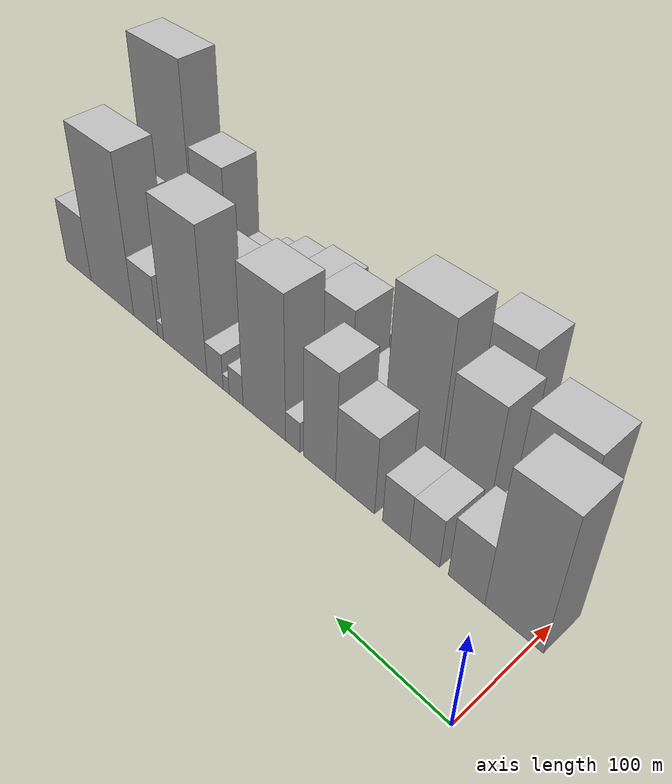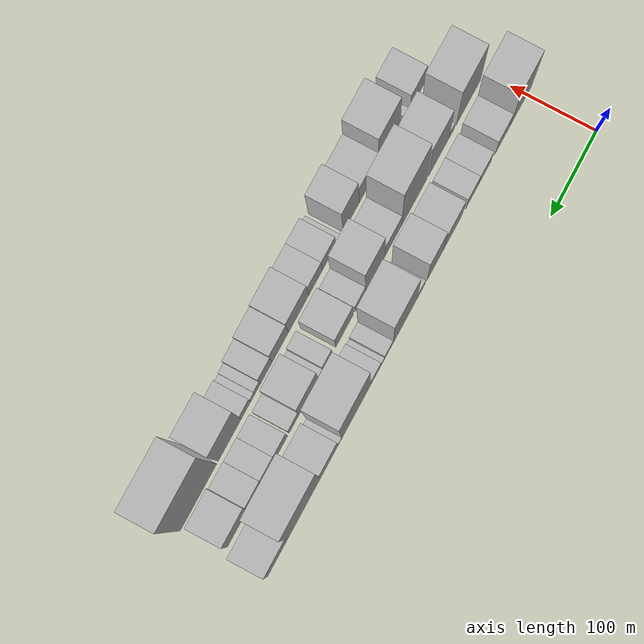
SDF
<sdf version="1.6">
 <world name="default">
  <model name="building_17">
   <static>1</static>
   <pose>100.0000 15.3192 0 0.000000 0.000000 0.000000</pose>
   <link name="link">
    <pose>0 0 70.50 0 0 0</pose>
    <collision name="collision"><geometry><box><size>40.0000 48.6428 141.0000</size></box></geometry></collision>
    <visual name="visual">
     <cast_shadows>0</cast_shadows>
     <geometry><box><size>40.0000 48.6428 141.0000</size></box></geometry>
     <material>
      <script>
       <uri>model://HANNAS_wall/materials/scripts</uri>
       <uri>model://HANNAS_wall/materials/textures</uri>
       <name>vrc/HANNAS_wall</name>
      </script>
     </material>
    </visual>
   </link>
  </model>
  <model name="building_18">
   <static>1</static>
   <pose>100.0000 55.6882 0 0.000000 0.000000 0.000000</pose>
   <link name="link">
    <pose>0 0 31.50 0 0 0</pose>
    <collision name="collision"><geometry><box><size>40.0000 32.0952 63.0000</size></box></geometry></collision>
    <visual name="visual">
     <cast_shadows>0</cast_shadows>
     <geometry><box><size>40.0000 32.0952 63.0000</size></box></geometry>
     <material>
      <script>
       <uri>model://HANNAS_wall/materials/scripts</uri>
       <uri>model://HANNAS_wall/materials/textures</uri>
       <name>vrc/HANNAS_wall</name>
      </script>
     </material>
    </visual>
   </link>
  </model>
  <model name="building_19">
   <static>1</static>
   <pose>100.0000 93.7765 0 0.000000 0.000000 0.000000</pose>
   <link name="link">
    <pose>0 0 25.50 0 0 0</pose>
    <collision name="collision"><geometry><box><size>40.0000 28.0813 51.0000</size></box></geometry></collision>
    <visual name="visual">
     <cast_shadows>0</cast_shadows>
     <geometry><box><size>40.0000 28.0813 51.0000</size></box></geometry>
     <material>
      <script>
       <uri>model://HANNAS_wall/materials/scripts</uri>
       <uri>model://HANNAS_wall/materials/textures</uri>
       <name>vrc/HANNAS_wall</name>
      </script>
     </material>
    </visual>
   </link>
  </model>
  <model name="building_20">
   <static>1</static>
   <pose>100.0000 121.1682 0 0.000000 0.000000 0.000000</pose>
   <link name="link">
    <pose>0 0 25.50 0 0 0</pose>
    <collision name="collision"><geometry><box><size>40.0000 26.7020 51.0000</size></box></geometry></collision>
    <visual name="visual">
     <cast_shadows>0</cast_shadows>
     <geometry><box><size>40.0000 26.7020 51.0000</size></box></geometry>
     <material>
      <script>
       <uri>model://HANNAS_wall/materials/scripts</uri>
       <uri>model://HANNAS_wall/materials/textures</uri>
       <name>vrc/HANNAS_wall</name>
      </script>
     </material>
    </visual>
   </link>
  </model>
  <model name="building_21">
   <static>1</static>
   <pose>100.0000 162.8495 0 0.000000 0.000000 0.000000</pose>
   <link name="link">
    <pose>0 0 40.50 0 0 0</pose>
    <collision name="collision"><geometry><box><size>40.0000 40.6607 81.0000</size></box></geometry></collision>
    <visual name="visual">
     <cast_shadows>0</cast_shadows>
     <geometry><box><size>40.0000 40.6607 81.0000</size></box></geometry>
     <material>
      <script>
       <uri>model://HANNAS_wall/materials/scripts</uri>
       <uri>model://HANNAS_wall/materials/textures</uri>
       <name>vrc/HANNAS_wall</name>
      </script>
     </material>
    </visual>
   </link>
  </model>
  <model name="building_22">
   <static>1</static>
   <pose>100.0000 200.8894 0 0.000000 0.000000 0.000000</pose>
   <link name="link">
    <pose>0 0 57.00 0 0 0</pose>
    <collision name="collision"><geometry><box><size>40.0000 35.4190 114.0000</size></box></geometry></collision>
    <visual name="visual">
     <cast_shadows>0</cast_shadows>
     <geometry><box><size>40.0000 35.4190 114.0000</size></box></geometry>
     <material>
      <script>
       <uri>model://HANNAS_wall/materials/scripts</uri>
       <uri>model://HANNAS_wall/materials/textures</uri>
       <name>vrc/HANNAS_wall</name>
      </script>
     </material>
    </visual>
   </link>
  </model>
  <model name="building_23">
   <static>1</static>
   <pose>100.0000 230.9444 0 0.000000 0.000000 0.000000</pose>
   <link name="link">
    <pose>0 0 16.50 0 0 0</pose>
    <collision name="collision"><geometry><box><size>40.0000 16.6910 33.0000</size></box></geometry></collision>
    <visual name="visual">
     <cast_shadows>0</cast_shadows>
     <geometry><box><size>40.0000 16.6910 33.0000</size></box></geometry>
     <material>
      <script>
       <uri>model://HANNAS_wall/materials/scripts</uri>
       <uri>model://HANNAS_wall/materials/textures</uri>
       <name>vrc/HANNAS_wall</name>
      </script>
     </material>
    </visual>
   </link>
  </model>
  <model name="building_24">
   <static>1</static>
   <pose>100.0000 265.1523 0 0.000000 0.000000 0.000000</pose>
   <link name="link">
    <pose>0 0 75.00 0 0 0</pose>
    <collision name="collision"><geometry><box><size>40.0000 51.7249 150.0000</size></box></geometry></collision>
    <visual name="visual">
     <cast_shadows>0</cast_shadows>
     <geometry><box><size>40.0000 51.7249 150.0000</size></box></geometry>
     <material>
      <script>
       <uri>model://HANNAS_wall/materials/scripts</uri>
       <uri>model://HANNAS_wall/materials/textures</uri>
       <name>vrc/HANNAS_wall</name>
      </script>
     </material>
    </visual>
   </link>
  </model>
  <model name="building_25">
   <static>1</static>
   <pose>100.0000 299.8778 0 0.000000 0.000000 0.000000</pose>
   <link name="link">
    <pose>0 0 16.50 0 0 0</pose>
    <collision name="collision"><geometry><box><size>40.0000 17.7260 33.0000</size></box></geometry></collision>
    <visual name="visual">
     <cast_shadows>0</cast_shadows>
     <geometry><box><size>40.0000 17.7260 33.0000</size></box></geometry>
     <material>
      <script>
       <uri>model://HANNAS_wall/materials/scripts</uri>
       <uri>model://HANNAS_wall/materials/textures</uri>
       <name>vrc/HANNAS_wall</name>
      </script>
     </material>
    </visual>
   </link>
  </model>
  <model name="building_26">
   <static>1</static>
   <pose>100.0000 312.5977 0 0.000000 0.000000 0.000000</pose>
   <link name="link">
    <pose>0 0 9.00 0 0 0</pose>
    <collision name="collision"><geometry><box><size>40.0000 7.7139 18.0000</size></box></geometry></collision>
    <visual name="visual">
     <cast_shadows>0</cast_shadows>
     <geometry><box><size>40.0000 7.7139 18.0000</size></box></geometry>
     <material>
      <script>
       <uri>model://HANNAS_wall/materials/scripts</uri>
       <uri>model://HANNAS_wall/materials/textures</uri>
       <name>vrc/HANNAS_wall</name>
      </script>
     </material>
    </visual>
   </link>
  </model>
  <model name="building_27">
   <static>1</static>
   <pose>100.0000 327.2426 0 0.000000 0.000000 0.000000</pose>
   <link name="link">
    <pose>0 0 19.50 0 0 0</pose>
    <collision name="collision"><geometry><box><size>40.0000 21.5758 39.0000</size></box></geometry></collision>
    <visual name="visual">
     <cast_shadows>0</cast_shadows>
     <geometry><box><size>40.0000 21.5758 39.0000</size></box></geometry>
     <material>
      <script>
       <uri>model://HANNAS_wall/materials/scripts</uri>
       <uri>model://HANNAS_wall/materials/textures</uri>
       <name>vrc/HANNAS_wall</name>
      </script>
     </material>
    </visual>
   </link>
  </model>
  <model name="building_28">
   <static>1</static>
   <pose>100.0000 368.3218 0 0.000000 0.000000 0.000000</pose>
   <link name="link">
    <pose>0 0 78.00 0 0 0</pose>
    <collision name="collision"><geometry><box><size>40.0000 60.5826 156.0000</size></box></geometry></collision>
    <visual name="visual">
     <cast_shadows>0</cast_shadows>
     <geometry><box><size>40.0000 60.5826 156.0000</size></box></geometry>
     <material>
      <script>
       <uri>model://HANNAS_wall/materials/scripts</uri>
       <uri>model://HANNAS_wall/materials/textures</uri>
       <name>vrc/HANNAS_wall</name>
      </script>
     </material>
    </visual>
   </link>
  </model>
  <model name="building_29">
   <static>1</static>
   <pose>100.0000 402.6213 0 0.000000 0.000000 0.000000</pose>
   <link name="link">
    <pose>0 0 9.00 0 0 0</pose>
    <collision name="collision"><geometry><box><size>40.0000 8.0165 18.0000</size></box></geometry></collision>
    <visual name="visual">
     <cast_shadows>0</cast_shadows>
     <geometry><box><size>40.0000 8.0165 18.0000</size></box></geometry>
     <material>
      <script>
       <uri>model://HANNAS_wall/materials/scripts</uri>
       <uri>model://HANNAS_wall/materials/textures</uri>
       <name>vrc/HANNAS_wall</name>
      </script>
     </material>
    </visual>
   </link>
  </model>
  <model name="building_30">
   <static>1</static>
   <pose>100.0000 424.9119 0 0.000000 0.000000 0.000000</pose>
   <link name="link">
    <pose>0 0 33.00 0 0 0</pose>
    <collision name="collision"><geometry><box><size>40.0000 36.5647 66.0000</size></box></geometry></collision>
    <visual name="visual">
     <cast_shadows>0</cast_shadows>
     <geometry><box><size>40.0000 36.5647 66.0000</size></box></geometry>
     <material>
      <script>
       <uri>model://HANNAS_wall/materials/scripts</uri>
       <uri>model://HANNAS_wall/materials/textures</uri>
       <name>vrc/HANNAS_wall</name>
      </script>
     </material>
    </visual>
   </link>
  </model>
  <model name="building_31">
   <static>1</static>
   <pose>100.0000 477.3125 0 0.000000 0.000000 0.000000</pose>
   <link name="link">
    <pose>0 0 85.50 0 0 0</pose>
    <collision name="collision"><geometry><box><size>40.0000 68.2364 171.0000</size></box></geometry></collision>
    <visual name="visual">
     <cast_shadows>0</cast_shadows>
     <geometry><box><size>40.0000 68.2364 171.0000</size></box></geometry>
     <material>
      <script>
       <uri>model://HANNAS_wall/materials/scripts</uri>
       <uri>model://HANNAS_wall/materials/textures</uri>
       <name>vrc/HANNAS_wall</name>
      </script>
     </material>
    </visual>
   </link>
  </model>
  <model name="building_32">
   <static>1</static>
   <pose>100.0000 532.5778 0 0.000000 0.000000 0.000000</pose>
   <link name="link">
    <pose>0 0 36.00 0 0 0</pose>
    <collision name="collision"><geometry><box><size>40.0000 42.2942 72.0000</size></box></geometry></collision>
    <visual name="visual">
     <cast_shadows>0</cast_shadows>
     <geometry><box><size>40.0000 42.2942 72.0000</size></box></geometry>
     <material>
      <script>
       <uri>model://HANNAS_wall/materials/scripts</uri>
       <uri>model://HANNAS_wall/materials/textures</uri>
       <name>vrc/HANNAS_wall</name>
      </script>
     </material>
    </visual>
   </link>
  </model>
  <model name="building_47">
   <static>1</static>
   <pose>149.0000 36.3631 0 0.000000 0.000000 0.000000</pose>
   <link name="link">
    <pose>0 0 69.00 0 0 0</pose>
    <collision name="collision"><geometry><box><size>40.0000 53.1241 138.0000</size></box></geometry></collision>
    <visual name="visual">
     <cast_shadows>0</cast_shadows>
     <geometry><box><size>40.0000 53.1241 138.0000</size></box></geometry>
     <material>
      <script>
       <uri>model://HANNAS_wall/materials/scripts</uri>
       <uri>model://HANNAS_wall/materials/textures</uri>
       <name>vrc/HANNAS_wall</name>
      </script>
     </material>
    </visual>
   </link>
  </model>
  <model name="building_48">
   <static>1</static>
   <pose>149.0000 72.8684 0 0.000000 0.000000 0.000000</pose>
   <link name="link">
    <pose>0 0 13.50 0 0 0</pose>
    <collision name="collision"><geometry><box><size>40.0000 11.8866 27.0000</size></box></geometry></collision>
    <visual name="visual">
     <cast_shadows>0</cast_shadows>
     <geometry><box><size>40.0000 11.8866 27.0000</size></box></geometry>
     <material>
      <script>
       <uri>model://HANNAS_wall/materials/scripts</uri>
       <uri>model://HANNAS_wall/materials/textures</uri>
       <name>vrc/HANNAS_wall</name>
      </script>
     </material>
    </visual>
   </link>
  </model>
  <model name="building_49">
   <static>1</static>
   <pose>149.0000 100.6919 0 0.000000 0.000000 0.000000</pose>
   <link name="link">
    <pose>0 0 63.00 0 0 0</pose>
    <collision name="collision"><geometry><box><size>40.0000 43.7605 126.0000</size></box></geometry></collision>
    <visual name="visual">
     <cast_shadows>0</cast_shadows>
     <geometry><box><size>40.0000 43.7605 126.0000</size></box></geometry>
     <material>
      <script>
       <uri>model://HANNAS_wall/materials/scripts</uri>
       <uri>model://HANNAS_wall/materials/textures</uri>
       <name>vrc/HANNAS_wall</name>
      </script>
     </material>
    </visual>
   </link>
  </model>
  <model name="building_50">
   <static>1</static>
   <pose>149.0000 153.8974 0 0.000000 0.000000 0.000000</pose>
   <link name="link">
    <pose>0 0 85.50 0 0 0</pose>
    <collision name="collision"><geometry><box><size>40.0000 54.6505 171.0000</size></box></geometry></collision>
    <visual name="visual">
     <cast_shadows>0</cast_shadows>
     <geometry><box><size>40.0000 54.6505 171.0000</size></box></geometry>
     <material>
      <script>
       <uri>model://HANNAS_wall/materials/scripts</uri>
       <uri>model://HANNAS_wall/materials/textures</uri>
       <name>vrc/HANNAS_wall</name>
      </script>
     </material>
    </visual>
   </link>
  </model>
  <model name="building_51">
   <static>1</static>
   <pose>149.0000 198.9157 0 0.000000 0.000000 0.000000</pose>
   <link name="link">
    <pose>0 0 30.00 0 0 0</pose>
    <collision name="collision"><geometry><box><size>40.0000 35.3862 60.0000</size></box></geometry></collision>
    <visual name="visual">
     <cast_shadows>0</cast_shadows>
     <geometry><box><size>40.0000 35.3862 60.0000</size></box></geometry>
     <material>
      <script>
       <uri>model://HANNAS_wall/materials/scripts</uri>
       <uri>model://HANNAS_wall/materials/textures</uri>
       <name>vrc/HANNAS_wall</name>
      </script>
     </material>
    </visual>
   </link>
  </model>
  <model name="building_52">
   <static>1</static>
   <pose>149.0000 237.0964 0 0.000000 0.000000 0.000000</pose>
   <link name="link">
    <pose>0 0 60.00 0 0 0</pose>
    <collision name="collision"><geometry><box><size>40.0000 40.9751 120.0000</size></box></geometry></collision>
    <visual name="visual">
     <cast_shadows>0</cast_shadows>
     <geometry><box><size>40.0000 40.9751 120.0000</size></box></geometry>
     <material>
      <script>
       <uri>model://HANNAS_wall/materials/scripts</uri>
       <uri>model://HANNAS_wall/materials/textures</uri>
       <name>vrc/HANNAS_wall</name>
      </script>
     </material>
    </visual>
   </link>
  </model>
  <model name="building_53">
   <static>1</static>
   <pose>149.0000 269.1525 0 0.000000 0.000000 0.000000</pose>
   <link name="link">
    <pose>0 0 19.50 0 0 0</pose>
    <collision name="collision"><geometry><box><size>40.0000 23.1371 39.0000</size></box></geometry></collision>
    <visual name="visual">
     <cast_shadows>0</cast_shadows>
     <geometry><box><size>40.0000 23.1371 39.0000</size></box></geometry>
     <material>
      <script>
       <uri>model://HANNAS_wall/materials/scripts</uri>
       <uri>model://HANNAS_wall/materials/textures</uri>
       <name>vrc/HANNAS_wall</name>
      </script>
     </material>
    </visual>
   </link>
  </model>
  <model name="building_54">
   <static>1</static>
   <pose>149.0000 302.4720 0 0.000000 0.000000 0.000000</pose>
   <link name="link">
    <pose>0 0 33.00 0 0 0</pose>
    <collision name="collision"><geometry><box><size>40.0000 37.5020 66.0000</size></box></geometry></collision>
    <visual name="visual">
     <cast_shadows>0</cast_shadows>
     <geometry><box><size>40.0000 37.5020 66.0000</size></box></geometry>
     <material>
      <script>
       <uri>model://HANNAS_wall/materials/scripts</uri>
       <uri>model://HANNAS_wall/materials/textures</uri>
       <name>vrc/HANNAS_wall</name>
      </script>
     </material>
    </visual>
   </link>
  </model>
  <model name="building_55">
   <static>1</static>
   <pose>149.0000 338.1999 0 0.000000 0.000000 0.000000</pose>
   <link name="link">
    <pose>0 0 19.50 0 0 0</pose>
    <collision name="collision"><geometry><box><size>40.0000 19.9538 39.0000</size></box></geometry></collision>
    <visual name="visual">
     <cast_shadows>0</cast_shadows>
     <geometry><box><size>40.0000 19.9538 39.0000</size></box></geometry>
     <material>
      <script>
       <uri>model://HANNAS_wall/materials/scripts</uri>
       <uri>model://HANNAS_wall/materials/textures</uri>
       <name>vrc/HANNAS_wall</name>
      </script>
     </material>
    </visual>
   </link>
  </model>
  <model name="building_56">
   <static>1</static>
   <pose>149.0000 352.8837 0 0.000000 0.000000 0.000000</pose>
   <link name="link">
    <pose>0 0 10.50 0 0 0</pose>
    <collision name="collision"><geometry><box><size>40.0000 9.4139 21.0000</size></box></geometry></collision>
    <visual name="visual">
     <cast_shadows>0</cast_shadows>
     <geometry><box><size>40.0000 9.4139 21.0000</size></box></geometry>
     <material>
      <script>
       <uri>model://HANNAS_wall/materials/scripts</uri>
       <uri>model://HANNAS_wall/materials/textures</uri>
       <name>vrc/HANNAS_wall</name>
      </script>
     </material>
    </visual>
   </link>
  </model>
  <model name="building_57">
   <static>1</static>
   <pose>149.0000 377.9766 0 0.000000 0.000000 0.000000</pose>
   <link name="link">
    <pose>0 0 37.50 0 0 0</pose>
    <collision name="collision"><geometry><box><size>40.0000 40.7718 75.0000</size></box></geometry></collision>
    <visual name="visual">
     <cast_shadows>0</cast_shadows>
     <geometry><box><size>40.0000 40.7718 75.0000</size></box></geometry>
     <material>
      <script>
       <uri>model://HANNAS_wall/materials/scripts</uri>
       <uri>model://HANNAS_wall/materials/textures</uri>
       <name>vrc/HANNAS_wall</name>
      </script>
     </material>
    </visual>
   </link>
  </model>
  <model name="building_58">
   <static>1</static>
   <pose>149.0000 408.7440 0 0.000000 0.000000 0.000000</pose>
   <link name="link">
    <pose>0 0 18.00 0 0 0</pose>
    <collision name="collision"><geometry><box><size>40.0000 20.7629 36.0000</size></box></geometry></collision>
    <visual name="visual">
     <cast_shadows>0</cast_shadows>
     <geometry><box><size>40.0000 20.7629 36.0000</size></box></geometry>
     <material>
      <script>
       <uri>model://HANNAS_wall/materials/scripts</uri>
       <uri>model://HANNAS_wall/materials/textures</uri>
       <name>vrc/HANNAS_wall</name>
      </script>
     </material>
    </visual>
   </link>
  </model>
  <model name="building_59">
   <static>1</static>
   <pose>149.0000 435.0041 0 0.000000 0.000000 0.000000</pose>
   <link name="link">
    <pose>0 0 24.00 0 0 0</pose>
    <collision name="collision"><geometry><box><size>40.0000 25.7574 48.0000</size></box></geometry></collision>
    <visual name="visual">
     <cast_shadows>0</cast_shadows>
     <geometry><box><size>40.0000 25.7574 48.0000</size></box></geometry>
     <material>
      <script>
       <uri>model://HANNAS_wall/materials/scripts</uri>
       <uri>model://HANNAS_wall/materials/textures</uri>
       <name>vrc/HANNAS_wall</name>
      </script>
     </material>
    </visual>
   </link>
  </model>
  <model name="building_60">
   <static>1</static>
   <pose>149.0000 461.1705 0 0.000000 0.000000 0.000000</pose>
   <link name="link">
    <pose>0 0 25.50 0 0 0</pose>
    <collision name="collision"><geometry><box><size>40.0000 26.5755 51.0000</size></box></geometry></collision>
    <visual name="visual">
     <cast_shadows>0</cast_shadows>
     <geometry><box><size>40.0000 26.5755 51.0000</size></box></geometry>
     <material>
      <script>
       <uri>model://HANNAS_wall/materials/scripts</uri>
       <uri>model://HANNAS_wall/materials/textures</uri>
       <name>vrc/HANNAS_wall</name>
      </script>
     </material>
    </visual>
   </link>
  </model>
  <model name="building_61">
   <static>1</static>
   <pose>149.0000 489.3406 0 0.000000 0.000000 0.000000</pose>
   <link name="link">
    <pose>0 0 27.00 0 0 0</pose>
    <collision name="collision"><geometry><box><size>40.0000 29.7647 54.0000</size></box></geometry></collision>
    <visual name="visual">
     <cast_shadows>0</cast_shadows>
     <geometry><box><size>40.0000 29.7647 54.0000</size></box></geometry>
     <material>
      <script>
       <uri>model://HANNAS_wall/materials/scripts</uri>
       <uri>model://HANNAS_wall/materials/textures</uri>
       <name>vrc/HANNAS_wall</name>
      </script>
     </material>
    </visual>
   </link>
  </model>
  <model name="building_62">
   <static>1</static>
   <pose>149.0000 525.7327 0 0.000000 0.000000 0.000000</pose>
   <link name="link">
    <pose>0 0 37.50 0 0 0</pose>
    <collision name="collision"><geometry><box><size>40.0000 43.0194 75.0000</size></box></geometry></collision>
    <visual name="visual">
     <cast_shadows>0</cast_shadows>
     <geometry><box><size>40.0000 43.0194 75.0000</size></box></geometry>
     <material>
      <script>
       <uri>model://HANNAS_wall/materials/scripts</uri>
       <uri>model://HANNAS_wall/materials/textures</uri>
       <name>vrc/HANNAS_wall</name>
      </script>
     </material>
    </visual>
   </link>
  </model>
  <model name="building_81">
   <static>1</static>
   <pose>198.0000 53.2725 0 0.000000 0.000000 0.000000</pose>
   <link name="link">
    <pose>0 0 30.00 0 0 0</pose>
    <collision name="collision"><geometry><box><size>40.0000 34.5901 60.0000</size></box></geometry></collision>
    <visual name="visual">
     <cast_shadows>0</cast_shadows>
     <geometry><box><size>40.0000 34.5901 60.0000</size></box></geometry>
     <material>
      <script>
       <uri>model://HANNAS_wall/materials/scripts</uri>
       <uri>model://HANNAS_wall/materials/textures</uri>
       <name>vrc/HANNAS_wall</name>
      </script>
     </material>
    </visual>
   </link>
  </model>
  <model name="building_82">
   <static>1</static>
   <pose>198.0000 79.8839 0 0.000000 0.000000 0.000000</pose>
   <link name="link">
    <pose>0 0 12.00 0 0 0</pose>
    <collision name="collision"><geometry><box><size>40.0000 10.6327 24.0000</size></box></geometry></collision>
    <visual name="visual">
     <cast_shadows>0</cast_shadows>
     <geometry><box><size>40.0000 10.6327 24.0000</size></box></geometry>
     <material>
      <script>
       <uri>model://HANNAS_wall/materials/scripts</uri>
       <uri>model://HANNAS_wall/materials/textures</uri>
       <name>vrc/HANNAS_wall</name>
      </script>
     </material>
    </visual>
   </link>
  </model>
  <model name="building_83">
   <static>1</static>
   <pose>198.0000 116.2841 0 0.000000 0.000000 0.000000</pose>
   <link name="link">
    <pose>0 0 67.50 0 0 0</pose>
    <collision name="collision"><geometry><box><size>40.0000 46.1676 135.0000</size></box></geometry></collision>
    <visual name="visual">
     <cast_shadows>0</cast_shadows>
     <geometry><box><size>40.0000 46.1676 135.0000</size></box></geometry>
     <material>
      <script>
       <uri>model://HANNAS_wall/materials/scripts</uri>
       <uri>model://HANNAS_wall/materials/textures</uri>
       <name>vrc/HANNAS_wall</name>
      </script>
     </material>
    </visual>
   </link>
  </model>
  <model name="building_84">
   <static>1</static>
   <pose>198.0000 159.7624 0 0.000000 0.000000 0.000000</pose>
   <link name="link">
    <pose>0 0 37.50 0 0 0</pose>
    <collision name="collision"><geometry><box><size>40.0000 40.7889 75.0000</size></box></geometry></collision>
    <visual name="visual">
     <cast_shadows>0</cast_shadows>
     <geometry><box><size>40.0000 40.7889 75.0000</size></box></geometry>
     <material>
      <script>
       <uri>model://HANNAS_wall/materials/scripts</uri>
       <uri>model://HANNAS_wall/materials/textures</uri>
       <name>vrc/HANNAS_wall</name>
      </script>
     </material>
    </visual>
   </link>
  </model>
  <model name="building_85">
   <static>1</static>
   <pose>198.0000 197.4069 0 0.000000 0.000000 0.000000</pose>
   <link name="link">
    <pose>0 0 52.50 0 0 0</pose>
    <collision name="collision"><geometry><box><size>40.0000 34.5001 105.0000</size></box></geometry></collision>
    <visual name="visual">
     <cast_shadows>0</cast_shadows>
     <geometry><box><size>40.0000 34.5001 105.0000</size></box></geometry>
     <material>
      <script>
       <uri>model://HANNAS_wall/materials/scripts</uri>
       <uri>model://HANNAS_wall/materials/textures</uri>
       <name>vrc/HANNAS_wall</name>
      </script>
     </material>
    </visual>
   </link>
  </model>
  <model name="building_86">
   <static>1</static>
   <pose>198.0000 225.2315 0 0.000000 0.000000 0.000000</pose>
   <link name="link">
    <pose>0 0 10.50 0 0 0</pose>
    <collision name="collision"><geometry><box><size>40.0000 9.1493 21.0000</size></box></geometry></collision>
    <visual name="visual">
     <cast_shadows>0</cast_shadows>
     <geometry><box><size>40.0000 9.1493 21.0000</size></box></geometry>
     <material>
      <script>
       <uri>model://HANNAS_wall/materials/scripts</uri>
       <uri>model://HANNAS_wall/materials/textures</uri>
       <name>vrc/HANNAS_wall</name>
      </script>
     </material>
    </visual>
   </link>
  </model>
  <model name="building_87">
   <static>1</static>
   <pose>198.0000 244.1164 0 0.000000 0.000000 0.000000</pose>
   <link name="link">
    <pose>0 0 27.00 0 0 0</pose>
    <collision name="collision"><geometry><box><size>40.0000 28.6205 54.0000</size></box></geometry></collision>
    <visual name="visual">
     <cast_shadows>0</cast_shadows>
     <geometry><box><size>40.0000 28.6205 54.0000</size></box></geometry>
     <material>
      <script>
       <uri>model://HANNAS_wall/materials/scripts</uri>
       <uri>model://HANNAS_wall/materials/textures</uri>
       <name>vrc/HANNAS_wall</name>
      </script>
     </material>
    </visual>
   </link>
  </model>
  <model name="building_88">
   <static>1</static>
   <pose>198.0000 273.0441 0 0.000000 0.000000 0.000000</pose>
   <link name="link">
    <pose>0 0 27.00 0 0 0</pose>
    <collision name="collision"><geometry><box><size>40.0000 29.2349 54.0000</size></box></geometry></collision>
    <visual name="visual">
     <cast_shadows>0</cast_shadows>
     <geometry><box><size>40.0000 29.2349 54.0000</size></box></geometry>
     <material>
      <script>
       <uri>model://HANNAS_wall/materials/scripts</uri>
       <uri>model://HANNAS_wall/materials/textures</uri>
       <name>vrc/HANNAS_wall</name>
      </script>
     </material>
    </visual>
   </link>
  </model>
  <model name="building_89">
   <static>1</static>
   <pose>198.0000 309.0213 0 0.000000 0.000000 0.000000</pose>
   <link name="link">
    <pose>0 0 36.00 0 0 0</pose>
    <collision name="collision"><geometry><box><size>40.0000 42.7197 72.0000</size></box></geometry></collision>
    <visual name="visual">
     <cast_shadows>0</cast_shadows>
     <geometry><box><size>40.0000 42.7197 72.0000</size></box></geometry>
     <material>
      <script>
       <uri>model://HANNAS_wall/materials/scripts</uri>
       <uri>model://HANNAS_wall/materials/textures</uri>
       <name>vrc/HANNAS_wall</name>
      </script>
     </material>
    </visual>
   </link>
  </model>
  <model name="building_90">
   <static>1</static>
   <pose>198.0000 347.4466 0 0.000000 0.000000 0.000000</pose>
   <link name="link">
    <pose>0 0 31.50 0 0 0</pose>
    <collision name="collision"><geometry><box><size>40.0000 34.1309 63.0000</size></box></geometry></collision>
    <visual name="visual">
     <cast_shadows>0</cast_shadows>
     <geometry><box><size>40.0000 34.1309 63.0000</size></box></geometry>
     <material>
      <script>
       <uri>model://HANNAS_wall/materials/scripts</uri>
       <uri>model://HANNAS_wall/materials/textures</uri>
       <name>vrc/HANNAS_wall</name>
      </script>
     </material>
    </visual>
   </link>
  </model>
  <model name="building_91">
   <static>1</static>
   <pose>198.0000 377.0333 0 0.000000 0.000000 0.000000</pose>
   <link name="link">
    <pose>0 0 24.00 0 0 0</pose>
    <collision name="collision"><geometry><box><size>40.0000 25.0425 48.0000</size></box></geometry></collision>
    <visual name="visual">
     <cast_shadows>0</cast_shadows>
     <geometry><box><size>40.0000 25.0425 48.0000</size></box></geometry>
     <material>
      <script>
       <uri>model://HANNAS_wall/materials/scripts</uri>
       <uri>model://HANNAS_wall/materials/textures</uri>
       <name>vrc/HANNAS_wall</name>
      </script>
     </material>
    </visual>
   </link>
  </model>
  <model name="building_92">
   <static>1</static>
   <pose>198.0000 395.2842 0 0.000000 0.000000 0.000000</pose>
   <link name="link">
    <pose>0 0 13.50 0 0 0</pose>
    <collision name="collision"><geometry><box><size>40.0000 11.4593 27.0000</size></box></geometry></collision>
    <visual name="visual">
     <cast_shadows>0</cast_shadows>
     <geometry><box><size>40.0000 11.4593 27.0000</size></box></geometry>
     <material>
      <script>
       <uri>model://HANNAS_wall/materials/scripts</uri>
       <uri>model://HANNAS_wall/materials/textures</uri>
       <name>vrc/HANNAS_wall</name>
      </script>
     </material>
    </visual>
   </link>
  </model>
  <model name="building_93">
   <static>1</static>
   <pose>198.0000 405.2965 0 0.000000 0.000000 0.000000</pose>
   <link name="link">
    <pose>0 0 10.50 0 0 0</pose>
    <collision name="collision"><geometry><box><size>40.0000 8.5654 21.0000</size></box></geometry></collision>
    <visual name="visual">
     <cast_shadows>0</cast_shadows>
     <geometry><box><size>40.0000 8.5654 21.0000</size></box></geometry>
     <material>
      <script>
       <uri>model://HANNAS_wall/materials/scripts</uri>
       <uri>model://HANNAS_wall/materials/textures</uri>
       <name>vrc/HANNAS_wall</name>
      </script>
     </material>
    </visual>
   </link>
  </model>
  <model name="building_94">
   <static>1</static>
   <pose>198.0000 419.4480 0 0.000000 0.000000 0.000000</pose>
   <link name="link">
    <pose>0 0 16.50 0 0 0</pose>
    <collision name="collision"><geometry><box><size>40.0000 19.7376 33.0000</size></box></geometry></collision>
    <visual name="visual">
     <cast_shadows>0</cast_shadows>
     <geometry><box><size>40.0000 19.7376 33.0000</size></box></geometry>
     <material>
      <script>
       <uri>model://HANNAS_wall/materials/scripts</uri>
       <uri>model://HANNAS_wall/materials/textures</uri>
       <name>vrc/HANNAS_wall</name>
      </script>
     </material>
    </visual>
   </link>
  </model>
  <model name="building_95">
   <static>1</static>
   <pose>198.0000 453.2464 0 0.000000 0.000000 0.000000</pose>
   <link name="link">
    <pose>0 0 60.00 0 0 0</pose>
    <collision name="collision"><geometry><box><size>40.0000 47.8591 120.0000</size></box></geometry></collision>
    <visual name="visual">
     <cast_shadows>0</cast_shadows>
     <geometry><box><size>40.0000 47.8591 120.0000</size></box></geometry>
     <material>
      <script>
       <uri>model://HANNAS_wall/materials/scripts</uri>
       <uri>model://HANNAS_wall/materials/textures</uri>
       <name>vrc/HANNAS_wall</name>
      </script>
     </material>
    </visual>
   </link>
  </model>
  <model name="building_96">
   <static>1</static>
   <pose>198.0000 517.8338 0 0.000000 0.000000 0.000000</pose>
   <link name="link">
    <pose>0 0 102.00 0 0 0</pose>
    <collision name="collision"><geometry><box><size>40.0000 75.3158 204.0000</size></box></geometry></collision>
    <visual name="visual">
     <cast_shadows>0</cast_shadows>
     <geometry><box><size>40.0000 75.3158 204.0000</size></box></geometry>
     <material>
      <script>
       <uri>model://HANNAS_wall/materials/scripts</uri>
       <uri>model://HANNAS_wall/materials/textures</uri>
       <name>vrc/HANNAS_wall</name>
      </script>
     </material>
    </visual>
   </link>
  </model>
 </world>
</sdf>
